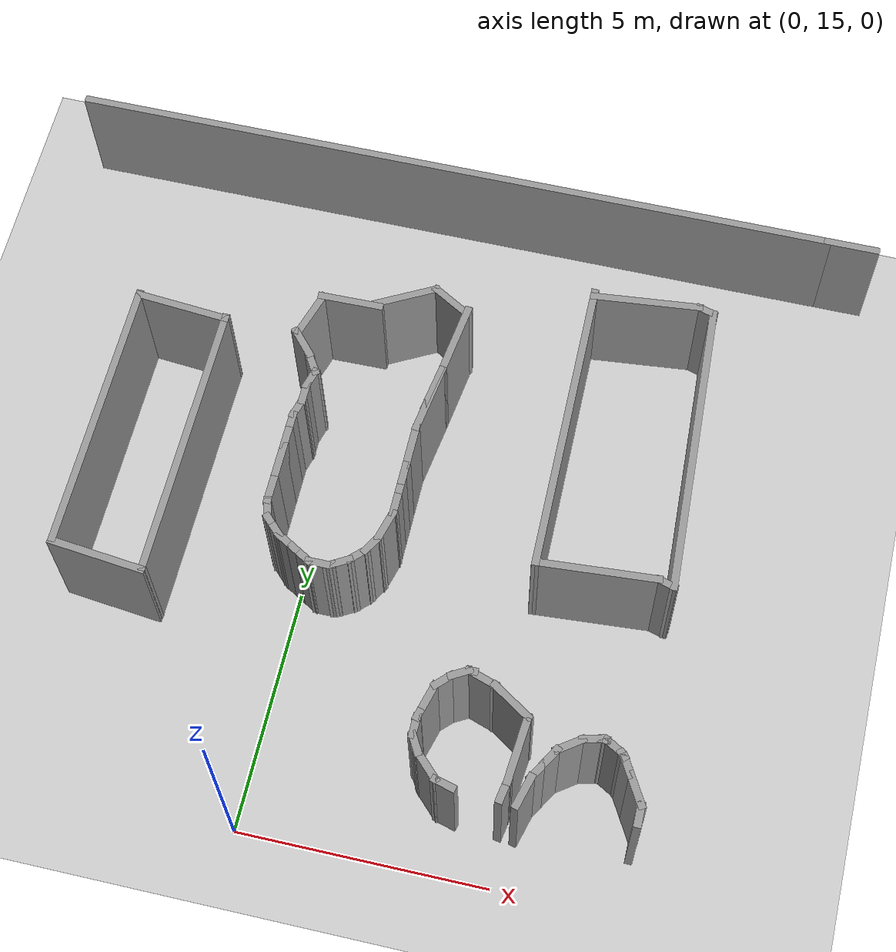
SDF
<sdf version="1.7">
 <world name="default">
  <model name="ground_plane">
   <static>1</static>
   <link name="link">
    <collision name="collision">
     <geometry><plane><normal>0 0 1</normal><size>100 100</size></plane></geometry>
     <surface><friction><ode><mu>100</mu><mu2>50</mu2></ode></friction></surface>
    </collision>
    <visual name="visual">
     <cast_shadows>0</cast_shadows>
     <geometry><plane><normal>0 0 1</normal><size>100 100</size></plane></geometry>
     <material>
      <script><uri>file://media/materials/scripts/gazebo.material</uri><name>Gazebo/Grey</name></script>
     </material>
    </visual>
   </link>
  </model>
  <model name="complex_wall">
   <pose>1.5 0.5 0 0 0 -1.5708</pose>
   <link name="Wall_100">
    <collision name="Wall_100_Collision">
     <geometry><box><size>0.5 0.15 2.5</size></box></geometry>
     <pose>0 0 1.25 0 -0 0</pose>
    </collision>
    <visual name="Wall_100_Visual">
     <pose>0 0 1.25 0 -0 0</pose>
     <geometry><box><size>0.5 0.15 2.5</size></box></geometry>
     <material>
      <script><uri>file://media/materials/scripts/gazebo.material</uri><name>Gazebo/Grey</name></script>
      <ambient>1 1 1 1</ambient>
     </material>
     <meta><layer>0</layer></meta>
    </visual>
    <pose>-19.3948 -0.52786 0 0 -0 2.0944</pose>
   </link>
   <link name="Wall_101">
    <collision name="Wall_101_Collision">
     <geometry><box><size>0.5 0.15 2.5</size></box></geometry>
     <pose>0 0 1.25 0 -0 0</pose>
    </collision>
    <visual name="Wall_101_Visual">
     <pose>0 0 1.25 0 -0 0</pose>
     <geometry><box><size>0.5 0.15 2.5</size></box></geometry>
     <material>
      <script><uri>file://media/materials/scripts/gazebo.material</uri><name>Gazebo/Grey</name></script>
      <ambient>1 1 1 1</ambient>
     </material>
     <meta><layer>0</layer></meta>
    </visual>
    <pose>-19.606 -0.252562 0 0 -0 2.35619</pose>
   </link>
   <link name="Wall_102">
    <collision name="Wall_102_Collision">
     <geometry><box><size>0.5 0.15 2.5</size></box></geometry>
     <pose>0 0 1.25 0 -0 0</pose>
    </collision>
    <visual name="Wall_102_Visual">
     <pose>0 0 1.25 0 -0 0</pose>
     <geometry><box><size>0.5 0.15 2.5</size></box></geometry>
     <material>
      <script><uri>file://media/materials/scripts/gazebo.material</uri><name>Gazebo/Grey</name></script>
      <ambient>1 1 1 1</ambient>
     </material>
     <meta><layer>0</layer></meta>
    </visual>
    <pose>-19.8813 -0.041319 0 0 -0 2.61799</pose>
   </link>
   <link name="Wall_103">
    <collision name="Wall_103_Collision">
     <geometry><box><size>0.75 0.15 2.5</size></box></geometry>
     <pose>0 0 1.25 0 -0 0</pose>
    </collision>
    <visual name="Wall_103_Visual">
     <pose>0 0 1.25 0 -0 0</pose>
     <geometry><box><size>0.75 0.15 2.5</size></box></geometry>
     <material>
      <script><uri>file://media/materials/scripts/gazebo.material</uri><name>Gazebo/Grey</name></script>
      <ambient>1 1 1 1</ambient>
     </material>
     <meta><layer>0</layer></meta>
    </visual>
    <pose>-20.3227 0.123827 0 0 -0 2.87979</pose>
   </link>
   <link name="Wall_104">
    <collision name="Wall_104_Collision">
     <geometry><box><size>0.5 0.15 2.5</size></box></geometry>
     <pose>0 0 1.25 0 -0 0</pose>
    </collision>
    <visual name="Wall_104_Visual">
     <pose>0 0 1.25 0 -0 0</pose>
     <geometry><box><size>0.5 0.15 2.5</size></box></geometry>
     <material>
      <script><uri>file://media/materials/scripts/gazebo.material</uri><name>Gazebo/Grey</name></script>
      <ambient>1 1 1 1</ambient>
     </material>
     <meta><layer>0</layer></meta>
    </visual>
    <pose>-20.7874 0.201473 0 0 -0 3.14159</pose>
   </link>
   <link name="Wall_105">
    <collision name="Wall_105_Collision">
     <geometry><box><size>0.5 0.15 2.5</size></box></geometry>
     <pose>0 0 1.25 0 -0 0</pose>
    </collision>
    <visual name="Wall_105_Visual">
     <pose>0 0 1.25 0 -0 0</pose>
     <geometry><box><size>0.5 0.15 2.5</size></box></geometry>
     <material>
      <script><uri>file://media/materials/scripts/gazebo.material</uri><name>Gazebo/Grey</name></script>
      <ambient>1 1 1 1</ambient>
     </material>
     <meta><layer>0</layer></meta>
    </visual>
    <pose>-21.1374 0.201473 0 0 -0 3.14159</pose>
   </link>
   <link name="Wall_106">
    <collision name="Wall_106_Collision">
     <geometry><box><size>0.5 0.15 2.5</size></box></geometry>
     <pose>0 0 1.25 0 -0 0</pose>
    </collision>
    <visual name="Wall_106_Visual">
     <pose>0 0 1.25 0 -0 0</pose>
     <geometry><box><size>0.5 0.15 2.5</size></box></geometry>
     <material>
      <script><uri>file://media/materials/scripts/gazebo.material</uri><name>Gazebo/Grey</name></script>
      <ambient>1 1 1 1</ambient>
     </material>
     <meta><layer>0</layer></meta>
    </visual>
    <pose>-21.4874 0.201473 0 0 -0 3.14159</pose>
   </link>
   <link name="Wall_107">
    <collision name="Wall_107_Collision">
     <geometry><box><size>1 0.15 2.5</size></box></geometry>
     <pose>0 0 1.25 0 -0 0</pose>
    </collision>
    <visual name="Wall_107_Visual">
     <pose>0 0 1.25 0 -0 0</pose>
     <geometry><box><size>1 0.15 2.5</size></box></geometry>
     <material>
      <script><uri>file://media/materials/scripts/gazebo.material</uri><name>Gazebo/Grey</name></script>
      <ambient>1 1 1 1</ambient>
     </material>
     <meta><layer>0</layer></meta>
    </visual>
    <pose>-22.0874 0.201473 0 0 -0 3.14159</pose>
   </link>
   <link name="Wall_111">
    <collision name="Wall_111_Collision">
     <geometry><box><size>1.61529 0.15 2.5</size></box></geometry>
     <pose>0 0 1.25 0 -0 0</pose>
    </collision>
    <visual name="Wall_111_Visual">
     <pose>0 0 1.25 0 -0 0</pose>
     <geometry><box><size>1.61529 0.15 2.5</size></box></geometry>
     <material>
      <script><uri>file://media/materials/scripts/gazebo.material</uri><name>Gazebo/Grey</name></script>
      <ambient>1 1 1 1</ambient>
     </material>
     <meta><layer>0</layer></meta>
    </visual>
    <pose>-24.5927 0.497103 0 0 -0 3.00766</pose>
   </link>
   <link name="Wall_112">
    <collision name="Wall_112_Collision">
     <geometry><box><size>0.15 0.15 2.5</size></box></geometry>
     <pose>0 0 1.25 0 -0 0</pose>
    </collision>
    <visual name="Wall_112_Visual">
     <pose>0 0 1.25 0 -0 0</pose>
     <geometry><box><size>0.15 0.15 2.5</size></box></geometry>
     <material>
      <script><uri>file://media/materials/scripts/gazebo.material</uri><name>Gazebo/Grey</name></script>
      <ambient>1 1 1 1</ambient>
     </material>
     <meta><layer>0</layer></meta>
    </visual>
    <pose>-25.3187 0.594936 0 0 -0 0</pose>
   </link>
   <link name="Wall_113">
    <collision name="Wall_113_Collision">
     <geometry><box><size>1 0.15 2.5</size></box></geometry>
     <pose>0 0 1.25 0 -0 0</pose>
    </collision>
    <visual name="Wall_113_Visual">
     <pose>0 0 1.25 0 -0 0</pose>
     <geometry><box><size>1 0.15 2.5</size></box></geometry>
     <material>
      <script><uri>file://media/materials/scripts/gazebo.material</uri><name>Gazebo/Grey</name></script>
      <ambient>1 1 1 1</ambient>
     </material>
     <meta><layer>0</layer></meta>
    </visual>
    <pose>-25.4386 0.226876 0 0 -0 -2.0944</pose>
   </link>
   <link name="Wall_114">
    <collision name="Wall_114_Collision">
     <geometry><box><size>1.44528 0.15 2.5</size></box></geometry>
     <pose>0 0 1.25 0 -0 0</pose>
    </collision>
    <visual name="Wall_114_Visual">
     <pose>0 0 1.25 0 -0 0</pose>
     <geometry><box><size>1.44528 0.15 2.5</size></box></geometry>
     <material>
      <script><uri>file://media/materials/scripts/gazebo.material</uri><name>Gazebo/Grey</name></script>
      <ambient>1 1 1 1</ambient>
     </material>
     <meta><layer>0</layer></meta>
    </visual>
    <pose>-25.3438 -0.711293 0 0 -0 -1.07646</pose>
   </link>
   <link name="Wall_117">
    <collision name="Wall_117_Collision">
     <geometry><box><size>1.34808 0.15 2.5</size></box></geometry>
     <pose>0 0 1.25 0 -0 0</pose>
    </collision>
    <visual name="Wall_117_Visual">
     <pose>0 0 1.25 0 -0 0</pose>
     <geometry><box><size>1.34808 0.15 2.5</size></box></geometry>
     <material>
      <script><uri>file://media/materials/scripts/gazebo.material</uri><name>Gazebo/Grey</name></script>
      <ambient>1 1 1 1</ambient>
     </material>
     <meta><layer>0</layer></meta>
    </visual>
    <pose>-24.9902 -1.76917 0 0 -0 -1.55537</pose>
   </link>
   <link name="Wall_118">
    <collision name="Wall_118_Collision">
     <geometry><box><size>1.09701 0.15 2.5</size></box></geometry>
     <pose>0 0 1.25 0 -0 0</pose>
    </collision>
    <visual name="Wall_118_Visual">
     <pose>0 0 1.25 0 -0 0</pose>
     <geometry><box><size>1.09701 0.15 2.5</size></box></geometry>
     <material>
      <script><uri>file://media/materials/scripts/gazebo.material</uri><name>Gazebo/Grey</name></script>
      <ambient>1 1 1 1</ambient>
     </material>
     <meta><layer>0</layer></meta>
    </visual>
    <pose>-24.5284 -2.47011 0 0 -0 -0.298026</pose>
   </link>
   <link name="Wall_129">
    <collision name="Wall_129_Collision">
     <geometry><box><size>0.25 0.15 2.5</size></box></geometry>
     <pose>0 0 1.25 0 -0 0</pose>
    </collision>
    <visual name="Wall_129_Visual">
     <pose>0 0 1.25 0 -0 0</pose>
     <geometry><box><size>0.25 0.15 2.5</size></box></geometry>
     <material>
      <script><uri>file://media/materials/scripts/gazebo.material</uri><name>Gazebo/Grey</name></script>
      <ambient>1 1 1 1</ambient>
     </material>
     <meta><layer>0</layer></meta>
    </visual>
    <pose>-17.8126 2.40032 0 0 -0 -1.5708</pose>
   </link>
   <link name="Wall_130">
    <collision name="Wall_130_Collision">
     <geometry><box><size>0.5 0.15 2.5</size></box></geometry>
     <pose>0 0 1.25 0 -0 0</pose>
    </collision>
    <visual name="Wall_130_Visual">
     <pose>0 0 1.25 0 -0 0</pose>
     <geometry><box><size>0.5 0.15 2.5</size></box></geometry>
     <material>
      <script><uri>file://media/materials/scripts/gazebo.material</uri><name>Gazebo/Grey</name></script>
      <ambient>1 1 1 1</ambient>
     </material>
     <meta><layer>0</layer></meta>
    </visual>
    <pose>-17.7251 2.19877 0 0 -0 -1.0472</pose>
   </link>
   <link name="Wall_131">
    <collision name="Wall_131_Collision">
     <geometry><box><size>0.5 0.15 2.5</size></box></geometry>
     <pose>0 0 1.25 0 -0 0</pose>
    </collision>
    <visual name="Wall_131_Visual">
     <pose>0 0 1.25 0 -0 0</pose>
     <geometry><box><size>0.5 0.15 2.5</size></box></geometry>
     <material>
      <script><uri>file://media/materials/scripts/gazebo.material</uri><name>Gazebo/Grey</name></script>
      <ambient>1 1 1 1</ambient>
     </material>
     <meta><layer>0</layer></meta>
    </visual>
    <pose>-17.5139 1.92347 0 0 -0 -0.785398</pose>
   </link>
   <link name="Wall_132">
    <collision name="Wall_132_Collision">
     <geometry><box><size>0.75 0.15 2.5</size></box></geometry>
     <pose>0 0 1.25 0 -0 0</pose>
    </collision>
    <visual name="Wall_132_Visual">
     <pose>0 0 1.25 0 -0 0</pose>
     <geometry><box><size>0.75 0.15 2.5</size></box></geometry>
     <material>
      <script><uri>file://media/materials/scripts/gazebo.material</uri><name>Gazebo/Grey</name></script>
      <ambient>1 1 1 1</ambient>
     </material>
     <meta><layer>0</layer></meta>
    </visual>
    <pose>-17.1003 1.72208 0 0 -0 -0.261799</pose>
   </link>
   <link name="Wall_133">
    <collision name="Wall_133_Collision">
     <geometry><box><size>0.25 0.15 2.5</size></box></geometry>
     <pose>0 0 1.25 0 -0 0</pose>
    </collision>
    <visual name="Wall_133_Visual">
     <pose>0 0 1.25 0 -0 0</pose>
     <geometry><box><size>0.25 0.15 2.5</size></box></geometry>
     <material>
      <script><uri>file://media/materials/scripts/gazebo.material</uri><name>Gazebo/Grey</name></script>
      <ambient>1 1 1 1</ambient>
     </material>
     <meta><layer>0</layer></meta>
    </visual>
    <pose>-16.7623 1.63149 0 0 -0 -0.261799</pose>
   </link>
   <link name="Wall_134">
    <collision name="Wall_134_Collision">
     <geometry><box><size>0.5 0.15 2.5</size></box></geometry>
     <pose>0 0 1.25 0 -0 0</pose>
    </collision>
    <visual name="Wall_134_Visual">
     <pose>0 0 1.25 0 -0 0</pose>
     <geometry><box><size>0.5 0.15 2.5</size></box></geometry>
     <material>
      <script><uri>file://media/materials/scripts/gazebo.material</uri><name>Gazebo/Grey</name></script>
      <ambient>1 1 1 1</ambient>
     </material>
     <meta><layer>0</layer></meta>
    </visual>
    <pose>-16.539 1.61855 0 0 -0 0</pose>
   </link>
   <link name="Wall_135">
    <collision name="Wall_135_Collision">
     <geometry><box><size>0.5 0.15 2.5</size></box></geometry>
     <pose>0 0 1.25 0 -0 0</pose>
    </collision>
    <visual name="Wall_135_Visual">
     <pose>0 0 1.25 0 -0 0</pose>
     <geometry><box><size>0.5 0.15 2.5</size></box></geometry>
     <material>
      <script><uri>file://media/materials/scripts/gazebo.material</uri><name>Gazebo/Grey</name></script>
      <ambient>1 1 1 1</ambient>
     </material>
     <meta><layer>0</layer></meta>
    </visual>
    <pose>-16.2124 1.70606 0 0 -0 0.523599</pose>
   </link>
   <link name="Wall_136">
    <collision name="Wall_136_Collision">
     <geometry><box><size>0.75 0.15 2.5</size></box></geometry>
     <pose>0 0 1.25 0 -0 0</pose>
    </collision>
    <visual name="Wall_136_Visual">
     <pose>0 0 1.25 0 -0 0</pose>
     <geometry><box><size>0.75 0.15 2.5</size></box></geometry>
     <material>
      <script><uri>file://media/materials/scripts/gazebo.material</uri><name>Gazebo/Grey</name></script>
      <ambient>1 1 1 1</ambient>
     </material>
     <meta><layer>0</layer></meta>
    </visual>
    <pose>-15.8487 2.00569 0 0 -0 0.785398</pose>
   </link>
   <link name="Wall_137">
    <collision name="Wall_137_Collision">
     <geometry><box><size>0.5 0.15 2.5</size></box></geometry>
     <pose>0 0 1.25 0 -0 0</pose>
    </collision>
    <visual name="Wall_137_Visual">
     <pose>0 0 1.25 0 -0 0</pose>
     <geometry><box><size>0.5 0.15 2.5</size></box></geometry>
     <material>
      <script><uri>file://media/materials/scripts/gazebo.material</uri><name>Gazebo/Grey</name></script>
      <ambient>1 1 1 1</ambient>
     </material>
     <meta><layer>0</layer></meta>
    </visual>
    <pose>-15.5913 2.38686 0 0 -0 1.309</pose>
   </link>
   <link name="Wall_140">
    <collision name="Wall_140_Collision">
     <geometry><box><size>0.521727 0.15 2.5</size></box></geometry>
     <pose>0 0 1.25 0 -0 0</pose>
    </collision>
    <visual name="Wall_140_Visual">
     <pose>0 0 1.25 0 -0 0</pose>
     <geometry><box><size>0.521727 0.15 2.5</size></box></geometry>
     <material>
      <script><uri>file://media/materials/scripts/gazebo.material</uri><name>Gazebo/Grey</name></script>
      <ambient>1 1 1 1</ambient>
     </material>
     <meta><layer>0</layer></meta>
    </visual>
    <pose>-15.7062 3.47397 0 0 -0 2.97356</pose>
   </link>
   <link name="Wall_144">
    <collision name="Wall_144_Collision">
     <geometry><box><size>0.15 0.15 2.5</size></box></geometry>
     <pose>0 0 1.25 0 -0 0</pose>
    </collision>
    <visual name="Wall_144_Visual">
     <pose>0 0 1.25 0 -0 0</pose>
     <geometry><box><size>0.15 0.15 2.5</size></box></geometry>
     <material>
      <script><uri>file://media/materials/scripts/gazebo.material</uri><name>Gazebo/Grey</name></script>
      <ambient>1 1 1 1</ambient>
     </material>
     <meta><layer>0</layer></meta>
    </visual>
    <pose>-17.1676 3.6136 0 0 -0 0</pose>
   </link>
   <link name="Wall_148">
    <collision name="Wall_148_Collision">
     <geometry><box><size>2.29146 0.15 2.5</size></box></geometry>
     <pose>0 0 1.25 0 -0 0</pose>
    </collision>
    <visual name="Wall_148_Visual">
     <pose>0 0 1.25 0 -0 0</pose>
     <geometry><box><size>2.29146 0.15 2.5</size></box></geometry>
     <material>
      <script><uri>file://media/materials/scripts/gazebo.material</uri><name>Gazebo/Grey</name></script>
      <ambient>1 1 1 1</ambient>
     </material>
     <meta><layer>0</layer></meta>
    </visual>
    <pose>-26.3129 4.07044 0 0 -0 -1.46971</pose>
   </link>
   <link name="Wall_149">
    <collision name="Wall_149_Collision">
     <geometry><box><size>6.21671 0.15 2.5</size></box></geometry>
     <pose>0 0 1.25 0 -0 0</pose>
    </collision>
    <visual name="Wall_149_Visual">
     <pose>0 0 1.25 0 -0 0</pose>
     <geometry><box><size>6.21671 0.15 2.5</size></box></geometry>
     <material>
      <script><uri>file://media/materials/scripts/gazebo.material</uri><name>Gazebo/Grey</name></script>
      <ambient>1 1 1 1</ambient>
     </material>
     <meta><layer>0</layer></meta>
    </visual>
    <pose>-23.2582 3.04839 0 0 -0 0.014249</pose>
   </link>
   <link name="Wall_150">
    <collision name="Wall_150_Collision">
     <geometry><box><size>2.51228 0.15 2.5</size></box></geometry>
     <pose>0 0 1.25 0 -0 0</pose>
    </collision>
    <visual name="Wall_150_Visual">
     <pose>0 0 1.25 0 -0 0</pose>
     <geometry><box><size>2.51228 0.15 2.5</size></box></geometry>
     <material>
      <script><uri>file://media/materials/scripts/gazebo.material</uri><name>Gazebo/Grey</name></script>
      <ambient>1 1 1 1</ambient>
     </material>
     <meta><layer>0</layer></meta>
    </visual>
    <pose>-20.3116 4.26959 0 0 -0 1.64404</pose>
   </link>
   <link name="Wall_151">
    <collision name="Wall_151_Collision">
     <geometry><box><size>6.18095 0.15 2.5</size></box></geometry>
     <pose>0 0 1.25 0 -0 0</pose>
    </collision>
    <visual name="Wall_151_Visual">
     <pose>0 0 1.25 0 -0 0</pose>
     <geometry><box><size>6.18095 0.15 2.5</size></box></geometry>
     <material>
      <script><uri>file://media/materials/scripts/gazebo.material</uri><name>Gazebo/Grey</name></script>
      <ambient>1 1 1 1</ambient>
     </material>
     <meta><layer>0</layer></meta>
    </visual>
    <pose>-23.3231 5.59417 0 0 -0 -3.08986</pose>
   </link>
   <link name="Wall_153">
    <collision name="Wall_153_Collision">
     <geometry><box><size>0.5 0.15 2.5</size></box></geometry>
     <pose>0 0 1.25 0 -0 0</pose>
    </collision>
    <visual name="Wall_153_Visual">
     <pose>0 0 1.25 0 -0 0</pose>
     <geometry><box><size>0.5 0.15 2.5</size></box></geometry>
     <material>
      <script><uri>file://media/materials/scripts/gazebo.material</uri><name>Gazebo/Grey</name></script>
      <ambient>1 1 1 1</ambient>
     </material>
     <meta><layer>0</layer></meta>
    </visual>
    <pose>-16.5234 4.17445 0 0 -0 -0.523599</pose>
   </link>
   <link name="Wall_154">
    <collision name="Wall_154_Collision">
     <geometry><box><size>0.5 0.15 2.5</size></box></geometry>
     <pose>0 0 1.25 0 -0 0</pose>
    </collision>
    <visual name="Wall_154_Visual">
     <pose>0 0 1.25 0 -0 0</pose>
     <geometry><box><size>0.5 0.15 2.5</size></box></geometry>
     <material>
      <script><uri>file://media/materials/scripts/gazebo.material</uri><name>Gazebo/Grey</name></script>
      <ambient>1 1 1 1</ambient>
     </material>
     <meta><layer>0</layer></meta>
    </visual>
    <pose>-16.2203 3.99945 0 0 -0 -0.523599</pose>
   </link>
   <link name="Wall_155">
    <collision name="Wall_155_Collision">
     <geometry><box><size>0.75 0.15 2.5</size></box></geometry>
     <pose>0 0 1.25 0 -0 0</pose>
    </collision>
    <visual name="Wall_155_Visual">
     <pose>0 0 1.25 0 -0 0</pose>
     <geometry><box><size>0.75 0.15 2.5</size></box></geometry>
     <material>
      <script><uri>file://media/materials/scripts/gazebo.material</uri><name>Gazebo/Grey</name></script>
      <ambient>1 1 1 1</ambient>
     </material>
     <meta><layer>0</layer></meta>
    </visual>
    <pose>-15.7789 3.83431 0 0 -0 -0.261799</pose>
   </link>
   <link name="Wall_177">
    <collision name="Wall_177_Collision">
     <geometry><box><size>0.5 0.15 2.5</size></box></geometry>
     <pose>0 0 1.25 0 -0 0</pose>
    </collision>
    <visual name="Wall_177_Visual">
     <pose>0 0 1.25 0 -0 0</pose>
     <geometry><box><size>0.5 0.15 2.5</size></box></geometry>
     <material>
      <script><uri>file://media/materials/scripts/gazebo.material</uri><name>Gazebo/Grey</name></script>
      <ambient>1 1 1 1</ambient>
     </material>
     <meta><layer>0</layer></meta>
    </visual>
    <pose>-15.8176 5.95812 0 0 -0 3.14159</pose>
   </link>
   <link name="Wall_178">
    <collision name="Wall_178_Collision">
     <geometry><box><size>0.75 0.15 2.5</size></box></geometry>
     <pose>0 0 1.25 0 -0 0</pose>
    </collision>
    <visual name="Wall_178_Visual">
     <pose>0 0 1.25 0 -0 0</pose>
     <geometry><box><size>0.75 0.15 2.5</size></box></geometry>
     <material>
      <script><uri>file://media/materials/scripts/gazebo.material</uri><name>Gazebo/Grey</name></script>
      <ambient>1 1 1 1</ambient>
     </material>
     <meta><layer>0</layer></meta>
    </visual>
    <pose>-16.2524 5.80812 0 0 -0 -2.61799</pose>
   </link>
   <link name="Wall_179">
    <collision name="Wall_179_Collision">
     <geometry><box><size>0.5 0.15 2.5</size></box></geometry>
     <pose>0 0 1.25 0 -0 0</pose>
    </collision>
    <visual name="Wall_179_Visual">
     <pose>0 0 1.25 0 -0 0</pose>
     <geometry><box><size>0.5 0.15 2.5</size></box></geometry>
     <material>
      <script><uri>file://media/materials/scripts/gazebo.material</uri><name>Gazebo/Grey</name></script>
      <ambient>1 1 1 1</ambient>
     </material>
     <meta><layer>0</layer></meta>
    </visual>
    <pose>-16.6637 5.57062 0 0 -0 -2.61799</pose>
   </link>
   <link name="Wall_180">
    <collision name="Wall_180_Collision">
     <geometry><box><size>0.25 0.15 2.5</size></box></geometry>
     <pose>0 0 1.25 0 -0 0</pose>
    </collision>
    <visual name="Wall_180_Visual">
     <pose>0 0 1.25 0 -0 0</pose>
     <geometry><box><size>0.25 0.15 2.5</size></box></geometry>
     <material>
      <script><uri>file://media/materials/scripts/gazebo.material</uri><name>Gazebo/Grey</name></script>
      <ambient>1 1 1 1</ambient>
     </material>
     <meta><layer>0</layer></meta>
    </visual>
    <pose>-16.8506 5.44777 0 0 -0 -2.35619</pose>
   </link>
   <link name="Wall_181">
    <collision name="Wall_181_Collision">
     <geometry><box><size>0.5 0.15 2.5</size></box></geometry>
     <pose>0 0 1.25 0 -0 0</pose>
    </collision>
    <visual name="Wall_181_Visual">
     <pose>0 0 1.25 0 -0 0</pose>
     <geometry><box><size>0.5 0.15 2.5</size></box></geometry>
     <material>
      <script><uri>file://media/materials/scripts/gazebo.material</uri><name>Gazebo/Grey</name></script>
      <ambient>1 1 1 1</ambient>
     </material>
     <meta><layer>0</layer></meta>
    </visual>
    <pose>-16.9735 5.26086 0 0 -0 -2.0944</pose>
   </link>
   <link name="Wall_182">
    <collision name="Wall_182_Collision">
     <geometry><box><size>0.15 0.15 2.5</size></box></geometry>
     <pose>0 0 1.25 0 -0 0</pose>
    </collision>
    <visual name="Wall_182_Visual">
     <pose>0 0 1.25 0 -0 0</pose>
     <geometry><box><size>0.15 0.15 2.5</size></box></geometry>
     <material>
      <script><uri>file://media/materials/scripts/gazebo.material</uri><name>Gazebo/Grey</name></script>
      <ambient>1 1 1 1</ambient>
     </material>
     <meta><layer>0</layer></meta>
    </visual>
    <pose>-17.061 5.1093 0 0 -0 0</pose>
   </link>
   <link name="Wall_183">
    <collision name="Wall_183_Collision">
     <geometry><box><size>0.25 0.15 2.5</size></box></geometry>
     <pose>0 0 1.25 0 -0 0</pose>
    </collision>
    <visual name="Wall_183_Visual">
     <pose>0 0 1.25 0 -0 0</pose>
     <geometry><box><size>0.25 0.15 2.5</size></box></geometry>
     <material>
      <script><uri>file://media/materials/scripts/gazebo.material</uri><name>Gazebo/Grey</name></script>
      <ambient>1 1 1 1</ambient>
     </material>
     <meta><layer>0</layer></meta>
    </visual>
    <pose>-17.061 5.0593 0 0 -0 -1.5708</pose>
   </link>
   <link name="Wall_184">
    <collision name="Wall_184_Collision">
     <geometry><box><size>0.5 0.15 2.5</size></box></geometry>
     <pose>0 0 1.25 0 -0 0</pose>
    </collision>
    <visual name="Wall_184_Visual">
     <pose>0 0 1.25 0 -0 0</pose>
     <geometry><box><size>0.5 0.15 2.5</size></box></geometry>
     <material>
      <script><uri>file://media/materials/scripts/gazebo.material</uri><name>Gazebo/Grey</name></script>
      <ambient>1 1 1 1</ambient>
     </material>
     <meta><layer>0</layer></meta>
    </visual>
    <pose>-17.0157 4.84026 0 0 -0 -1.309</pose>
   </link>
   <link name="Wall_185">
    <collision name="Wall_185_Collision">
     <geometry><box><size>0.654792 0.15 2.5</size></box></geometry>
     <pose>0 0 1.25 0 -0 0</pose>
    </collision>
    <visual name="Wall_185_Visual">
     <pose>0 0 1.25 0 -0 0</pose>
     <geometry><box><size>0.654792 0.15 2.5</size></box></geometry>
     <material>
      <script><uri>file://media/materials/scripts/gazebo.material</uri><name>Gazebo/Grey</name></script>
      <ambient>1 1 1 1</ambient>
     </material>
     <meta><layer>0</layer></meta>
    </visual>
    <pose>-16.8227 4.46659 0 0 -0 -0.945479</pose>
   </link>
   <link name="Wall_415">
    <collision name="Wall_415_Collision">
     <geometry><box><size>0.464645 0.15 2.5</size></box></geometry>
     <pose>0 0 1.25 0 -0 0</pose>
    </collision>
    <visual name="Wall_415_Visual">
     <pose>0 0 1.25 0 -0 0</pose>
     <geometry><box><size>0.464645 0.15 2.5</size></box></geometry>
     <material>
      <script><uri>file://media/materials/scripts/gazebo.material</uri><name>Gazebo/Grey</name></script>
      <ambient>1 1 1 1</ambient>
     </material>
     <meta><layer>0</layer></meta>
    </visual>
    <pose>-26.3777 5.28697 0 0 -0 -1.8491</pose>
   </link>
   <link name="Wall_417">
    <collision name="Wall_417_Collision">
     <geometry><box><size>0.464645 0.15 2.5</size></box></geometry>
     <pose>0 0 1.25 0 -0 0</pose>
    </collision>
    <visual name="Wall_417_Visual">
     <pose>0 0 1.25 0 -0 0</pose>
     <geometry><box><size>0.464645 0.15 2.5</size></box></geometry>
     <material>
      <script><uri>file://media/materials/scripts/gazebo.material</uri><name>Gazebo/Grey</name></script>
      <ambient>1 1 1 1</ambient>
     </material>
     <meta><layer>0</layer></meta>
    </visual>
    <pose>-20.3548 5.59883 0 0 -0 -1.8491</pose>
   </link>
   <link name="Wall_419">
    <collision name="Wall_419_Collision">
     <geometry><box><size>1.43279 0.15 2.5</size></box></geometry>
     <pose>0 0 1.25 0 -0 0</pose>
    </collision>
    <visual name="Wall_419_Visual">
     <pose>0 0 1.25 0 -0 0</pose>
     <geometry><box><size>1.43279 0.15 2.5</size></box></geometry>
     <material>
      <script><uri>file://media/materials/scripts/gazebo.material</uri><name>Gazebo/Grey</name></script>
      <ambient>1 1 1 1</ambient>
     </material>
     <meta><layer>0</layer></meta>
    </visual>
    <pose>-16.5285 3.55933 0 0 -0 3.05688</pose>
   </link>
   <link name="Wall_423">
    <collision name="Wall_423_Collision">
     <geometry><box><size>0.15 0.15 2.5</size></box></geometry>
     <pose>0 0 1.25 0 -0 0</pose>
    </collision>
    <visual name="Wall_423_Visual">
     <pose>0 0 1.25 0 -0 0</pose>
     <geometry><box><size>0.15 0.15 2.5</size></box></geometry>
     <material>
      <script><uri>file://media/materials/scripts/gazebo.material</uri><name>Gazebo/Grey</name></script>
      <ambient>1 1 1 1</ambient>
     </material>
     <meta><layer>0</layer></meta>
    </visual>
    <pose>-17.636 2.88499 0 0 -0 0</pose>
   </link>
   <link name="Wall_429">
    <collision name="Wall_429_Collision">
     <geometry><box><size>0.713069 0.15 2.5</size></box></geometry>
     <pose>0 0 1.25 0 -0 0</pose>
    </collision>
    <visual name="Wall_429_Visual">
     <pose>0 0 1.25 0 -0 0</pose>
     <geometry><box><size>0.713069 0.15 2.5</size></box></geometry>
     <material>
      <script><uri>file://media/materials/scripts/gazebo.material</uri><name>Gazebo/Grey</name></script>
      <ambient>1 1 1 1</ambient>
     </material>
     <meta><layer>0</layer></meta>
    </visual>
    <pose>-17.7243 2.61766 0 0 -0 1.25182</pose>
   </link>
   <link name="Wall_430">
    <collision name="Wall_430_Collision">
     <geometry><box><size>0.15 0.15 2.5</size></box></geometry>
     <pose>0 0 1.25 0 -0 0</pose>
    </collision>
    <visual name="Wall_430_Visual">
     <pose>0 0 1.25 0 -0 0</pose>
     <geometry><box><size>0.15 0.15 2.5</size></box></geometry>
     <material>
      <script><uri>file://media/materials/scripts/gazebo.material</uri><name>Gazebo/Grey</name></script>
      <ambient>1 1 1 1</ambient>
     </material>
     <meta><layer>0</layer></meta>
    </visual>
    <pose>-17.636 2.88499 0 0 -0 0</pose>
   </link>
   <link name="Wall_431">
    <collision name="Wall_431_Collision">
     <geometry><box><size>1.0162 0.15 2.5</size></box></geometry>
     <pose>0 0 1.25 0 -0 0</pose>
    </collision>
    <visual name="Wall_431_Visual">
     <pose>0 0 1.25 0 -0 0</pose>
     <geometry><box><size>1.0162 0.15 2.5</size></box></geometry>
     <material>
      <script><uri>file://media/materials/scripts/gazebo.material</uri><name>Gazebo/Grey</name></script>
      <ambient>1 1 1 1</ambient>
     </material>
     <meta><layer>0</layer></meta>
    </visual>
    <pose>-17.4018 3.2493 0 0 -0 0.999424</pose>
   </link>
   <link name="Wall_433">
    <collision name="Wall_433_Collision">
     <geometry><box><size>1.05109 0.15 2.5</size></box></geometry>
     <pose>0 0 1.25 0 -0 0</pose>
    </collision>
    <visual name="Wall_433_Visual">
     <pose>0 0 1.25 0 -0 0</pose>
     <geometry><box><size>1.05109 0.15 2.5</size></box></geometry>
     <material>
      <script><uri>file://media/materials/scripts/gazebo.material</uri><name>Gazebo/Grey</name></script>
      <ambient>1 1 1 1</ambient>
     </material>
     <meta><layer>0</layer></meta>
    </visual>
    <pose>-23.4216 0.328928 0 0 -0 2.98482</pose>
   </link>
   <link name="Wall_434">
    <collision name="Wall_434_Collision">
     <geometry><box><size>1.51849 0.15 2.5</size></box></geometry>
     <pose>0 0 1.25 0 -0 0</pose>
    </collision>
    <visual name="Wall_434_Visual">
     <pose>0 0 1.25 0 -0 0</pose>
     <geometry><box><size>1.51849 0.15 2.5</size></box></geometry>
     <material>
      <script><uri>file://media/materials/scripts/gazebo.material</uri><name>Gazebo/Grey</name></script>
      <ambient>1 1 1 1</ambient>
     </material>
     <meta><layer>0</layer></meta>
    </visual>
    <pose>-23.1895 0.300372 0 0 -0 -0.145045</pose>
   </link>
   <link name="Wall_437">
    <collision name="Wall_437_Collision">
     <geometry><box><size>16 0.15 2.5</size></box></geometry>
     <pose>0 0 1.25 0 -0 0</pose>
    </collision>
    <visual name="Wall_437_Visual">
     <pose>0 0 1.25 0 -0 0</pose>
     <geometry><box><size>16 0.15 2.5</size></box></geometry>
     <material>
      <script><uri>file://media/materials/scripts/gazebo.material</uri><name>Gazebo/Grey</name></script>
      <ambient>1 1 1 1</ambient>
     </material>
     <meta><layer>0</layer></meta>
    </visual>
    <pose>-28.55 -0.5 0 0 -0 -1.5708</pose>
   </link>
   <link name="Wall_441">
    <collision name="Wall_441_Collision">
     <geometry><box><size>1.15 0.15 2.5</size></box></geometry>
     <pose>0 0 1.25 0 -0 0</pose>
    </collision>
    <visual name="Wall_441_Visual">
     <pose>0 0 1.25 0 -0 0</pose>
     <geometry><box><size>1.15 0.15 2.5</size></box></geometry>
     <material>
      <script><uri>file://media/materials/scripts/gazebo.material</uri><name>Gazebo/Grey</name></script>
      <ambient>1 1 1 1</ambient>
     </material>
     <meta><layer>0</layer></meta>
    </visual>
    <pose>-28.55 7.925 0 0 -0 -1.5708</pose>
   </link>
   <link name="Wall_77">
    <collision name="Wall_77_Collision">
     <geometry><box><size>5.71511 0.15 2.5</size></box></geometry>
     <pose>0 0 1.25 0 -0 0</pose>
    </collision>
    <visual name="Wall_77_Visual">
     <pose>0 0 1.25 0 -0 0</pose>
     <geometry><box><size>5.71511 0.15 2.5</size></box></geometry>
     <material>
      <script><uri>file://media/materials/scripts/gazebo.material</uri><name>Gazebo/Grey</name></script>
      <ambient>1 1 1 1</ambient>
     </material>
     <meta><layer>0</layer></meta>
    </visual>
    <pose>-21.4256 -6.00415 0 0 -0 -0.00887</pose>
   </link>
   <link name="Wall_78">
    <collision name="Wall_78_Collision">
     <geometry><box><size>2.01025 0.15 2.5</size></box></geometry>
     <pose>0 0 1.25 0 -0 0</pose>
    </collision>
    <visual name="Wall_78_Visual">
     <pose>0 0 1.25 0 -0 0</pose>
     <geometry><box><size>2.01025 0.15 2.5</size></box></geometry>
     <material>
      <script><uri>file://media/materials/scripts/gazebo.material</uri><name>Gazebo/Grey</name></script>
      <ambient>1 1 1 1</ambient>
     </material>
     <meta><layer>0</layer></meta>
    </visual>
    <pose>-18.4966 -5.10383 0 0 -0 1.46575</pose>
   </link>
   <link name="Wall_79">
    <collision name="Wall_79_Collision">
     <geometry><box><size>5.76311 0.15 2.5</size></box></geometry>
     <pose>0 0 1.25 0 -0 0</pose>
    </collision>
    <visual name="Wall_79_Visual">
     <pose>0 0 1.25 0 -0 0</pose>
     <geometry><box><size>5.76311 0.15 2.5</size></box></geometry>
     <material>
      <script><uri>file://media/materials/scripts/gazebo.material</uri><name>Gazebo/Grey</name></script>
      <ambient>1 1 1 1</ambient>
     </material>
     <meta><layer>0</layer></meta>
    </visual>
    <pose>-21.2545 -4.15415 0 0 -0 3.1328</pose>
   </link>
   <link name="Wall_80">
    <collision name="Wall_80_Collision">
     <geometry><box><size>2.00584 0.15 2.5</size></box></geometry>
     <pose>0 0 1.25 0 -0 0</pose>
    </collision>
    <visual name="Wall_80_Visual">
     <pose>0 0 1.25 0 -0 0</pose>
     <geometry><box><size>2.00584 0.15 2.5</size></box></geometry>
     <material>
      <script><uri>file://media/materials/scripts/gazebo.material</uri><name>Gazebo/Grey</name></script>
      <ambient>1 1 1 1</ambient>
     </material>
     <meta><layer>0</layer></meta>
    </visual>
    <pose>-24.11 -5.05447 0 0 -0 -1.65012</pose>
   </link>
   <link name="Wall_82">
    <collision name="Wall_82_Collision">
     <geometry><box><size>0.753874 0.15 2.5</size></box></geometry>
     <pose>0 0 1.25 0 -0 0</pose>
    </collision>
    <visual name="Wall_82_Visual">
     <pose>0 0 1.25 0 -0 0</pose>
     <geometry><box><size>0.753874 0.15 2.5</size></box></geometry>
     <material>
      <script><uri>file://media/materials/scripts/gazebo.material</uri><name>Gazebo/Grey</name></script>
      <ambient>1 1 1 1</ambient>
     </material>
     <meta><layer>0</layer></meta>
    </visual>
    <pose>-23.85 -2.46416 0 0 -0 0.726611</pose>
   </link>
   <link name="Wall_84">
    <collision name="Wall_84_Collision">
     <geometry><box><size>0.559268 0.15 2.5</size></box></geometry>
     <pose>0 0 1.25 0 -0 0</pose>
    </collision>
    <visual name="Wall_84_Visual">
     <pose>0 0 1.25 0 -0 0</pose>
     <geometry><box><size>0.559268 0.15 2.5</size></box></geometry>
     <material>
      <script><uri>file://media/materials/scripts/gazebo.material</uri><name>Gazebo/Grey</name></script>
      <ambient>1 1 1 1</ambient>
     </material>
     <meta><layer>0</layer></meta>
    </visual>
    <pose>-23.4359 -2.15724 0 0 -0 0.572183</pose>
   </link>
   <link name="Wall_85">
    <collision name="Wall_85_Collision">
     <geometry><box><size>0.5 0.15 2.5</size></box></geometry>
     <pose>0 0 1.25 0 -0 0</pose>
    </collision>
    <visual name="Wall_85_Visual">
     <pose>0 0 1.25 0 -0 0</pose>
     <geometry><box><size>0.5 0.15 2.5</size></box></geometry>
     <material>
      <script><uri>file://media/materials/scripts/gazebo.material</uri><name>Gazebo/Grey</name></script>
      <ambient>1 1 1 1</ambient>
     </material>
     <meta><layer>0</layer></meta>
    </visual>
    <pose>-23.0948 -2.09173 0 0 -0 -0.261799</pose>
   </link>
   <link name="Wall_86">
    <collision name="Wall_86_Collision">
     <geometry><box><size>0.5 0.15 2.5</size></box></geometry>
     <pose>0 0 1.25 0 -0 0</pose>
    </collision>
    <visual name="Wall_86_Visual">
     <pose>0 0 1.25 0 -0 0</pose>
     <geometry><box><size>0.5 0.15 2.5</size></box></geometry>
     <material>
      <script><uri>file://media/materials/scripts/gazebo.material</uri><name>Gazebo/Grey</name></script>
      <ambient>1 1 1 1</ambient>
     </material>
     <meta><layer>0</layer></meta>
    </visual>
    <pose>-22.7508 -2.13703 0 0 -0 0</pose>
   </link>
   <link name="Wall_87">
    <collision name="Wall_87_Collision">
     <geometry><box><size>0.5 0.15 2.5</size></box></geometry>
     <pose>0 0 1.25 0 -0 0</pose>
    </collision>
    <visual name="Wall_87_Visual">
     <pose>0 0 1.25 0 -0 0</pose>
     <geometry><box><size>0.5 0.15 2.5</size></box></geometry>
     <material>
      <script><uri>file://media/materials/scripts/gazebo.material</uri><name>Gazebo/Grey</name></script>
      <ambient>1 1 1 1</ambient>
     </material>
     <meta><layer>0</layer></meta>
    </visual>
    <pose>-22.4067 -2.18232 0 0 -0 -0.261799</pose>
   </link>
   <link name="Wall_88">
    <collision name="Wall_88_Collision">
     <geometry><box><size>0.5 0.15 2.5</size></box></geometry>
     <pose>0 0 1.25 0 -0 0</pose>
    </collision>
    <visual name="Wall_88_Visual">
     <pose>0 0 1.25 0 -0 0</pose>
     <geometry><box><size>0.5 0.15 2.5</size></box></geometry>
     <material>
      <script><uri>file://media/materials/scripts/gazebo.material</uri><name>Gazebo/Grey</name></script>
      <ambient>1 1 1 1</ambient>
     </material>
     <meta><layer>0</layer></meta>
    </visual>
    <pose>-22.0627 -2.22761 0 0 -0 0</pose>
   </link>
   <link name="Wall_89">
    <collision name="Wall_89_Collision">
     <geometry><box><size>0.5 0.15 2.5</size></box></geometry>
     <pose>0 0 1.25 0 -0 0</pose>
    </collision>
    <visual name="Wall_89_Visual">
     <pose>0 0 1.25 0 -0 0</pose>
     <geometry><box><size>0.5 0.15 2.5</size></box></geometry>
     <material>
      <script><uri>file://media/materials/scripts/gazebo.material</uri><name>Gazebo/Grey</name></script>
      <ambient>1 1 1 1</ambient>
     </material>
     <meta><layer>0</layer></meta>
    </visual>
    <pose>-21.7127 -2.22761 0 0 -0 0</pose>
   </link>
   <link name="Wall_90">
    <collision name="Wall_90_Collision">
     <geometry><box><size>0.75 0.15 2.5</size></box></geometry>
     <pose>0 0 1.25 0 -0 0</pose>
    </collision>
    <visual name="Wall_90_Visual">
     <pose>0 0 1.25 0 -0 0</pose>
     <geometry><box><size>0.75 0.15 2.5</size></box></geometry>
     <material>
      <script><uri>file://media/materials/scripts/gazebo.material</uri><name>Gazebo/Grey</name></script>
      <ambient>1 1 1 1</ambient>
     </material>
     <meta><layer>0</layer></meta>
    </visual>
    <pose>-21.2377 -2.22761 0 0 -0 0</pose>
   </link>
   <link name="Wall_91">
    <collision name="Wall_91_Collision">
     <geometry><box><size>0.75 0.15 2.5</size></box></geometry>
     <pose>0 0 1.25 0 -0 0</pose>
    </collision>
    <visual name="Wall_91_Visual">
     <pose>0 0 1.25 0 -0 0</pose>
     <geometry><box><size>0.75 0.15 2.5</size></box></geometry>
     <material>
      <script><uri>file://media/materials/scripts/gazebo.material</uri><name>Gazebo/Grey</name></script>
      <ambient>1 1 1 1</ambient>
     </material>
     <meta><layer>0</layer></meta>
    </visual>
    <pose>-20.6377 -2.22761 0 0 -0 0</pose>
   </link>
   <link name="Wall_92">
    <collision name="Wall_92_Collision">
     <geometry><box><size>0.5 0.15 2.5</size></box></geometry>
     <pose>0 0 1.25 0 -0 0</pose>
    </collision>
    <visual name="Wall_92_Visual">
     <pose>0 0 1.25 0 -0 0</pose>
     <geometry><box><size>0.5 0.15 2.5</size></box></geometry>
     <material>
      <script><uri>file://media/materials/scripts/gazebo.material</uri><name>Gazebo/Grey</name></script>
      <ambient>1 1 1 1</ambient>
     </material>
     <meta><layer>0</layer></meta>
    </visual>
    <pose>-20.1686 -2.18232 0 0 -0 0.261799</pose>
   </link>
   <link name="Wall_93">
    <collision name="Wall_93_Collision">
     <geometry><box><size>0.25 0.15 2.5</size></box></geometry>
     <pose>0 0 1.25 0 -0 0</pose>
    </collision>
    <visual name="Wall_93_Visual">
     <pose>0 0 1.25 0 -0 0</pose>
     <geometry><box><size>0.25 0.15 2.5</size></box></geometry>
     <material>
      <script><uri>file://media/materials/scripts/gazebo.material</uri><name>Gazebo/Grey</name></script>
      <ambient>1 1 1 1</ambient>
     </material>
     <meta><layer>0</layer></meta>
    </visual>
    <pose>-19.9643 -2.10167 0 0 -0 0.785398</pose>
   </link>
   <link name="Wall_94">
    <collision name="Wall_94_Collision">
     <geometry><box><size>0.5 0.15 2.5</size></box></geometry>
     <pose>0 0 1.25 0 -0 0</pose>
    </collision>
    <visual name="Wall_94_Visual">
     <pose>0 0 1.25 0 -0 0</pose>
     <geometry><box><size>0.5 0.15 2.5</size></box></geometry>
     <material>
      <script><uri>file://media/materials/scripts/gazebo.material</uri><name>Gazebo/Grey</name></script>
      <ambient>1 1 1 1</ambient>
     </material>
     <meta><layer>0</layer></meta>
    </visual>
    <pose>-19.8052 -1.94257 0 0 -0 0.785398</pose>
   </link>
   <link name="Wall_95">
    <collision name="Wall_95_Collision">
     <geometry><box><size>0.5 0.15 2.5</size></box></geometry>
     <pose>0 0 1.25 0 -0 0</pose>
    </collision>
    <visual name="Wall_95_Visual">
     <pose>0 0 1.25 0 -0 0</pose>
     <geometry><box><size>0.5 0.15 2.5</size></box></geometry>
     <material>
      <script><uri>file://media/materials/scripts/gazebo.material</uri><name>Gazebo/Grey</name></script>
      <ambient>1 1 1 1</ambient>
     </material>
     <meta><layer>0</layer></meta>
    </visual>
    <pose>-19.5939 -1.66727 0 0 -0 1.0472</pose>
   </link>
   <link name="Wall_96">
    <collision name="Wall_96_Collision">
     <geometry><box><size>0.25 0.15 2.5</size></box></geometry>
     <pose>0 0 1.25 0 -0 0</pose>
    </collision>
    <visual name="Wall_96_Visual">
     <pose>0 0 1.25 0 -0 0</pose>
     <geometry><box><size>0.25 0.15 2.5</size></box></geometry>
     <material>
      <script><uri>file://media/materials/scripts/gazebo.material</uri><name>Gazebo/Grey</name></script>
      <ambient>1 1 1 1</ambient>
     </material>
     <meta><layer>0</layer></meta>
    </visual>
    <pose>-19.4814 -1.47242 0 0 -0 1.0472</pose>
   </link>
   <link name="Wall_97">
    <collision name="Wall_97_Collision">
     <geometry><box><size>0.5 0.15 2.5</size></box></geometry>
     <pose>0 0 1.25 0 -0 0</pose>
    </collision>
    <visual name="Wall_97_Visual">
     <pose>0 0 1.25 0 -0 0</pose>
     <geometry><box><size>0.5 0.15 2.5</size></box></geometry>
     <material>
      <script><uri>file://media/materials/scripts/gazebo.material</uri><name>Gazebo/Grey</name></script>
      <ambient>1 1 1 1</ambient>
     </material>
     <meta><layer>0</layer></meta>
    </visual>
    <pose>-19.3689 -1.27756 0 0 -0 1.0472</pose>
   </link>
   <link name="Wall_98">
    <collision name="Wall_98_Collision">
     <geometry><box><size>0.5 0.15 2.5</size></box></geometry>
     <pose>0 0 1.25 0 -0 0</pose>
    </collision>
    <visual name="Wall_98_Visual">
     <pose>0 0 1.25 0 -0 0</pose>
     <geometry><box><size>0.5 0.15 2.5</size></box></geometry>
     <material>
      <script><uri>file://media/materials/scripts/gazebo.material</uri><name>Gazebo/Grey</name></script>
      <ambient>1 1 1 1</ambient>
     </material>
     <meta><layer>0</layer></meta>
    </visual>
    <pose>-19.2814 -0.951007 0 0 -0 1.5708</pose>
   </link>
   <link name="Wall_99">
    <collision name="Wall_99_Collision">
     <geometry><box><size>0.25 0.15 2.5</size></box></geometry>
     <pose>0 0 1.25 0 -0 0</pose>
    </collision>
    <visual name="Wall_99_Visual">
     <pose>0 0 1.25 0 -0 0</pose>
     <geometry><box><size>0.25 0.15 2.5</size></box></geometry>
     <material>
      <script><uri>file://media/materials/scripts/gazebo.material</uri><name>Gazebo/Grey</name></script>
      <ambient>1 1 1 1</ambient>
     </material>
     <meta><layer>0</layer></meta>
    </visual>
    <pose>-19.2944 -0.727711 0 0 -0 1.8326</pose>
   </link>
   <static>1</static>
  </model>
 </world>
</sdf>
